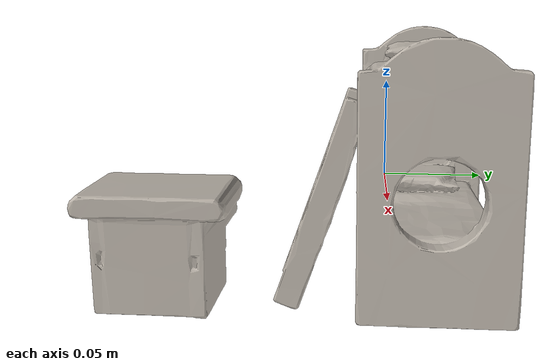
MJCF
<mujoco model="03">
  <default>
    <default class="03/visual">
      <geom group="2" type="mesh" contype="0" conaffinity="0"/>
    </default>
    <default class="03/collision">
      <geom group="3" type="mesh"/>
    </default>
  </default>
  <asset>
    <texture type="2d" name="img3" file="objects/03/img3.png"/>
    <material name="material_0.003" texture="img3" specular="0.0" shininess="0.0"/>
    <mesh file="objects/03/03.obj"/>
  </asset>
  <worldbody>
    <body name="03">
      <joint name="obj03" type="free"/>
      <geom material="material_0.003" mesh="03" class="03/visual"/>
      <geom mesh="03" class="03/collision" mass="0.5"/>
    </body>
  </worldbody>
</mujoco>
